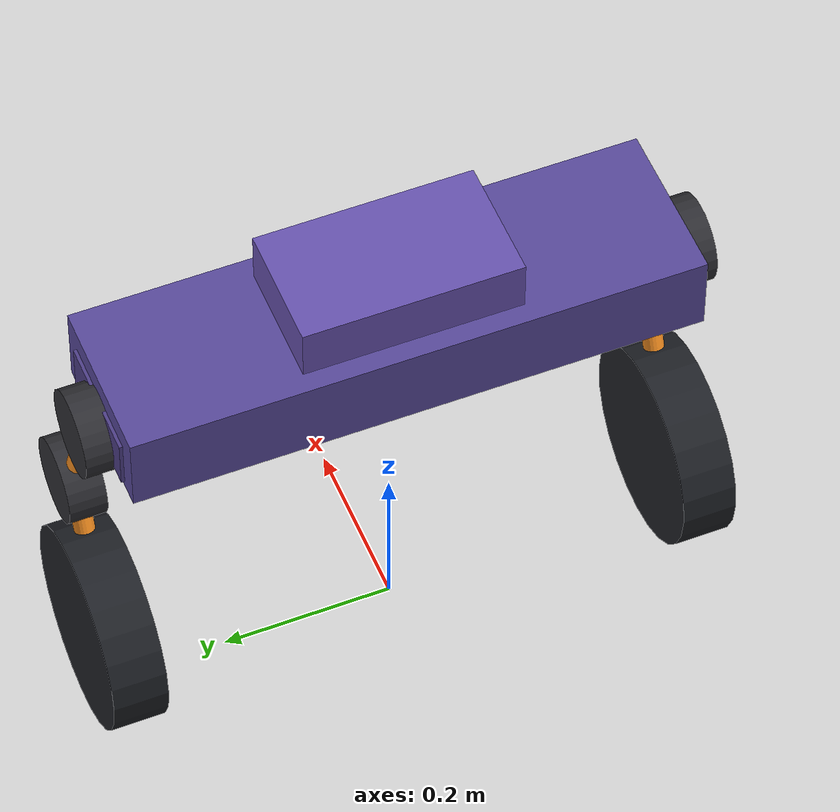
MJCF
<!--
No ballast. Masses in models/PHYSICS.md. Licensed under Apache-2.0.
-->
<mujoco model="prototype">
  <compiler angle="radian" autolimits="true"/>
  <option timestep="0.001" integrator="implicitfast" iterations="60"
          ls_iterations="20" noslip_iterations="4"/>

  <default>
    <joint armature="0.002" damping="0.15"/>
    <geom friction="0.8 0.01 0.001" solref="0.004 1"/>
    <default class="link">
      <geom type="capsule" size="0.012" contype="0" conaffinity="0"
            rgba="0.82 0.84 0.88 1"/>
    </default>
    <default class="servo">
      <geom type="cylinder" size="0.050 0.022" contype="0" conaffinity="0"
            quat="0.7071068 0.7071068 0 0" rgba="0.18 0.18 0.20 1"/>
    </default>
    <default class="wheel">
      <geom type="cylinder" size="0.120 0.032" friction="1.1 0.02 0.001"
            rgba="0.12 0.13 0.15 1"/>
    </default>
  </default>

  <worldbody>
    <body name="trunk" pos="0 0 0.408">
      <freejoint name="trunk_freejoint"/>
      <inertial pos="0.00014 0.00000 0.07200" mass="4.20"
                fullinertia="0.154 0.016 0.163 0 0 0"/>
      <geom name="trunk_collision" type="box" pos="0 0 0.086"
            size="0.095 0.328 0.048" rgba="0.34 0.28 0.60 1"/>
      <geom name="trunk_pod" type="box" pos="0 0 0.148"
            size="0.072 0.126 0.048" rgba="0.40 0.32 0.68 1"
            contype="0" conaffinity="0"/>
      <geom name="left_sponson" type="box" pos="0 0.278 0.076"
            size="0.070 0.054 0.030" rgba="0.30 0.24 0.52 1"
            contype="0" conaffinity="0"/>
      <geom name="right_sponson" type="box" pos="0 -0.278 0.076"
            size="0.070 0.054 0.030" rgba="0.30 0.24 0.52 1"
            contype="0" conaffinity="0"/>
      <geom name="axle_beam" type="capsule" fromto="0 0.336 0.050 0 -0.336 0.050"
            size="0.016" rgba="0.22 0.20 0.38 1"
            contype="0" conaffinity="0"/>
      <site name="imu" pos="-0.04095 0.04000 0.155" size="0.006"/>

      <body name="left_hip_mount" pos="0 0.3411 0.0602">
        <inertial pos="0 0 0" mass="0.15"
                  diaginertia="0.00012 0.00020 0.00012"/>
        <geom type="box" size="0.027 0.014 0.027" density="0"
              contype="0" conaffinity="0" rgba="0.10 0.65 0.95 1"/>
        <site name="left_hip_origin" size="0.008" rgba="0.10 0.65 0.95 1"/>

        <body name="left_upper">
          <joint name="left_hip" type="hinge" axis="0 1 0" range="-0.65 0.65"/>
          <geom class="servo" name="left_hip_motor" mass="0.507"/>
          <geom class="link" name="left_upper_bar"
                fromto="0 0 0 0.075 0 -0.174" mass="0.16"
                rgba="0.95 0.55 0.12 1"/>
          <site name="left_knee" pos="0.075 0 -0.174" size="0.009"
                rgba="0.95 0.55 0.12 1"/>

          <body name="left_lower" pos="0.075 0 -0.174">
            <joint name="left_knee" type="hinge" axis="0 1 0" range="-1.20 1.20"/>
            <geom class="servo" name="left_knee_motor" mass="0.507"/>
            <geom class="link" name="left_lower_bar"
                  fromto="0 0 0 -0.075 0 -0.174" mass="0.16"
                  rgba="0.95 0.55 0.12 1"/>
            <body name="left_wheel" pos="-0.075 0 -0.174">
              <joint name="left_wheel_joint" type="hinge" axis="0 1 0"
                     damping="0.005" armature="0"/>
              <geom class="wheel" quat="0.7071068 0.7071068 0 0" mass="3.00"/>
            </body>
          </body>
        </body>
      </body>

      <body name="right_hip_mount" pos="0 -0.3411 0.0602">
        <inertial pos="0 0 0" mass="0.15"
                  diaginertia="0.00012 0.00020 0.00012"/>
        <geom type="box" size="0.027 0.014 0.027" density="0"
              contype="0" conaffinity="0" rgba="0.10 0.65 0.95 1"/>
        <site name="right_hip_origin" size="0.008" rgba="0.10 0.65 0.95 1"/>

        <body name="right_upper">
          <joint name="right_hip" type="hinge" axis="0 1 0" range="-0.65 0.65"/>
          <geom class="servo" name="right_hip_motor" mass="0.507"/>
          <geom class="link" name="right_upper_bar"
                fromto="0 0 0 0.075 0 -0.174" mass="0.16"
                rgba="0.95 0.55 0.12 1"/>
          <site name="right_knee" pos="0.075 0 -0.174" size="0.009"
                rgba="0.95 0.55 0.12 1"/>

          <body name="right_lower" pos="0.075 0 -0.174">
            <joint name="right_knee" type="hinge" axis="0 1 0" range="-1.20 1.20"/>
            <geom class="servo" name="right_knee_motor" mass="0.507"/>
            <geom class="link" name="right_lower_bar"
                  fromto="0 0 0 -0.075 0 -0.174" mass="0.16"
                  rgba="0.95 0.55 0.12 1"/>
            <body name="right_wheel" pos="-0.075 0 -0.174">
              <joint name="right_wheel_joint" type="hinge" axis="0 1 0"
                     damping="0.005" armature="0"/>
              <geom class="wheel" quat="0.7071068 0.7071068 0 0" mass="3.00"/>
            </body>
          </body>
        </body>
      </body>
    </body>
  </worldbody>

  <actuator>
    <position name="left_hip" joint="left_hip" kp="50" kv="2.0"
              ctrlrange="-0.65 0.65" forcerange="-16 16"/>
    <position name="left_knee" joint="left_knee" kp="50" kv="2.0"
              ctrlrange="-1.20 1.20" forcerange="-16 16"/>
    <motor name="left_wheel" joint="left_wheel_joint"
           ctrlrange="-20 20" forcerange="-20 20"/>
    <position name="right_hip" joint="right_hip" kp="50" kv="2.0"
              ctrlrange="-0.65 0.65" forcerange="-16 16"/>
    <position name="right_knee" joint="right_knee" kp="50" kv="2.0"
              ctrlrange="-1.20 1.20" forcerange="-16 16"/>
    <motor name="right_wheel" joint="right_wheel_joint"
           ctrlrange="-20 20" forcerange="-20 20"/>
  </actuator>

  <sensor>
    <framequat name="imu_quat" objtype="site" objname="imu"/>
    <gyro name="imu_gyro" site="imu"/>
    <velocimeter name="imu_velocity" site="imu"/>
  </sensor>
</mujoco>
